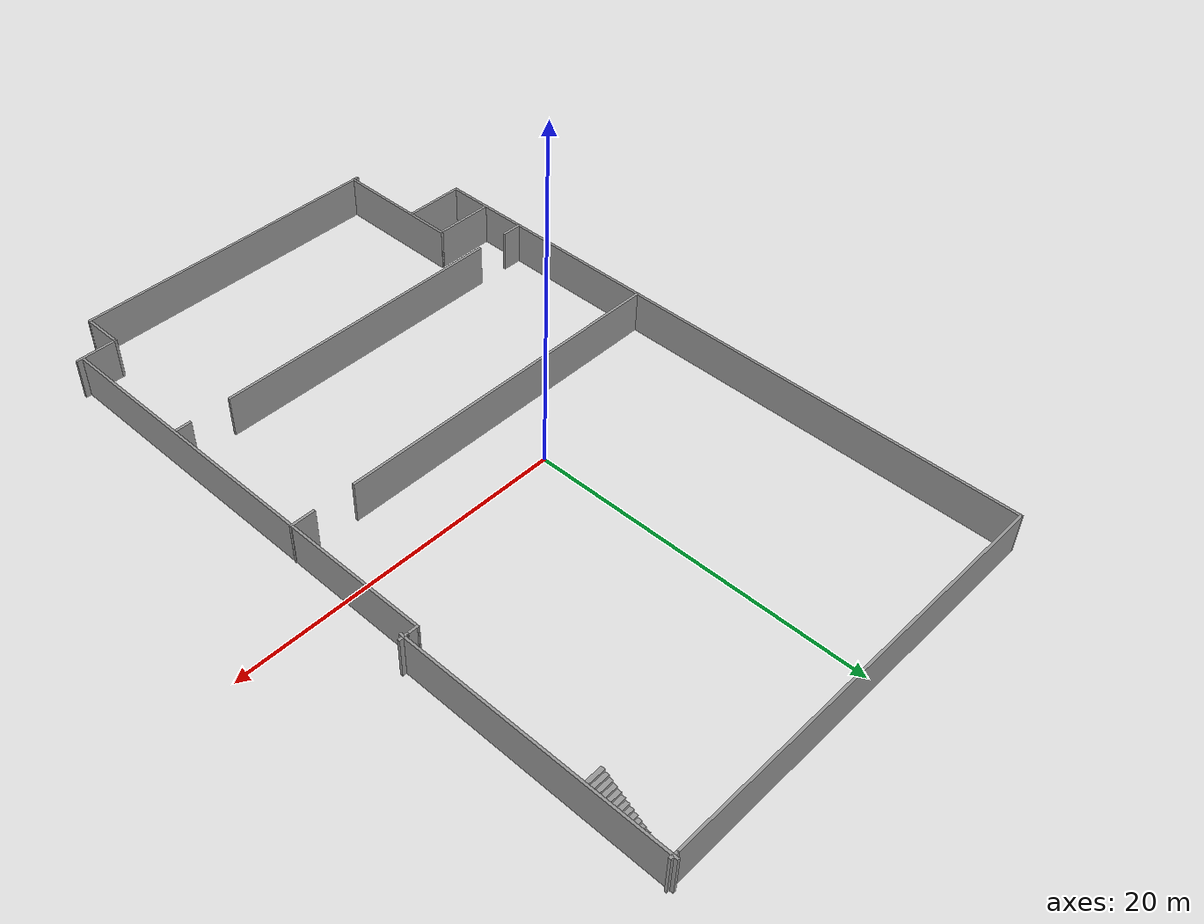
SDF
<?xml version='1.0'?>
<sdf version='1.7'>
  <model name='IMI'>
    <pose>1.61808 -1.29418 0 0 -0 0</pose>
    <link name='Stairs_0'>
      <visual name='Stairs_0_Visual_0'>
        <pose>11.9614 20.3772 0.083333 0 -0 0</pose>
        <geometry>
          <box>
            <size>1 0.233333 0.166667</size>
          </box>
        </geometry>
        <material>
          <script>
            <uri>file://media/materials/scripts/gazebo.material</uri>
            <name>Gazebo/Grey</name>
          </script>
          <ambient>1 1 1 1</ambient>
        </material>
        <meta>
          <layer>0</layer>
        </meta>
      </visual>
      <collision name='Stairs_0_Collision_0'>
        <geometry>
          <box>
            <size>1 0.233333 0.166667</size>
          </box>
        </geometry>
        <pose>11.9614 20.3772 0.083333 0 -0 0</pose>
      </collision>
      <visual name='Stairs_0_Visual_1'>
        <pose>11.9614 20.1438 0.25 0 -0 0</pose>
        <geometry>
          <box>
            <size>1 0.233333 0.166667</size>
          </box>
        </geometry>
        <material>
          <script>
            <uri>file://media/materials/scripts/gazebo.material</uri>
            <name>Gazebo/Grey</name>
          </script>
          <ambient>1 1 1 1</ambient>
        </material>
        <meta>
          <layer>0</layer>
        </meta>
      </visual>
      <collision name='Stairs_0_Collision_1'>
        <geometry>
          <box>
            <size>1 0.233333 0.166667</size>
          </box>
        </geometry>
        <pose>11.9614 20.1438 0.25 0 -0 0</pose>
      </collision>
      <visual name='Stairs_0_Visual_2'>
        <pose>11.9614 19.9105 0.416667 0 -0 0</pose>
        <geometry>
          <box>
            <size>1 0.233333 0.166667</size>
          </box>
        </geometry>
        <material>
          <script>
            <uri>file://media/materials/scripts/gazebo.material</uri>
            <name>Gazebo/Grey</name>
          </script>
          <ambient>1 1 1 1</ambient>
        </material>
        <meta>
          <layer>0</layer>
        </meta>
      </visual>
      <collision name='Stairs_0_Collision_2'>
        <geometry>
          <box>
            <size>1 0.233333 0.166667</size>
          </box>
        </geometry>
        <pose>11.9614 19.9105 0.416667 0 -0 0</pose>
      </collision>
      <visual name='Stairs_0_Visual_3'>
        <pose>11.9614 19.6772 0.583333 0 -0 0</pose>
        <geometry>
          <box>
            <size>1 0.233333 0.166667</size>
          </box>
        </geometry>
        <material>
          <script>
            <uri>file://media/materials/scripts/gazebo.material</uri>
            <name>Gazebo/Grey</name>
          </script>
          <ambient>1 1 1 1</ambient>
        </material>
        <meta>
          <layer>0</layer>
        </meta>
      </visual>
      <collision name='Stairs_0_Collision_3'>
        <geometry>
          <box>
            <size>1 0.233333 0.166667</size>
          </box>
        </geometry>
        <pose>11.9614 19.6772 0.583333 0 -0 0</pose>
      </collision>
      <visual name='Stairs_0_Visual_4'>
        <pose>11.9614 19.4438 0.75 0 -0 0</pose>
        <geometry>
          <box>
            <size>1 0.233333 0.166667</size>
          </box>
        </geometry>
        <material>
          <script>
            <uri>file://media/materials/scripts/gazebo.material</uri>
            <name>Gazebo/Grey</name>
          </script>
          <ambient>1 1 1 1</ambient>
        </material>
        <meta>
          <layer>0</layer>
        </meta>
      </visual>
      <collision name='Stairs_0_Collision_4'>
        <geometry>
          <box>
            <size>1 0.233333 0.166667</size>
          </box>
        </geometry>
        <pose>11.9614 19.4438 0.75 0 -0 0</pose>
      </collision>
      <visual name='Stairs_0_Visual_5'>
        <pose>11.9614 19.2105 0.916667 0 -0 0</pose>
        <geometry>
          <box>
            <size>1 0.233333 0.166667</size>
          </box>
        </geometry>
        <material>
          <script>
            <uri>file://media/materials/scripts/gazebo.material</uri>
            <name>Gazebo/Grey</name>
          </script>
          <ambient>1 1 1 1</ambient>
        </material>
        <meta>
          <layer>0</layer>
        </meta>
      </visual>
      <collision name='Stairs_0_Collision_5'>
        <geometry>
          <box>
            <size>1 0.233333 0.166667</size>
          </box>
        </geometry>
        <pose>11.9614 19.2105 0.916667 0 -0 0</pose>
      </collision>
      <visual name='Stairs_0_Visual_6'>
        <pose>11.9614 18.9772 1.08333 0 -0 0</pose>
        <geometry>
          <box>
            <size>1 0.233333 0.166667</size>
          </box>
        </geometry>
        <material>
          <script>
            <uri>file://media/materials/scripts/gazebo.material</uri>
            <name>Gazebo/Grey</name>
          </script>
          <ambient>1 1 1 1</ambient>
        </material>
        <meta>
          <layer>0</layer>
        </meta>
      </visual>
      <collision name='Stairs_0_Collision_6'>
        <geometry>
          <box>
            <size>1 0.233333 0.166667</size>
          </box>
        </geometry>
        <pose>11.9614 18.9772 1.08333 0 -0 0</pose>
      </collision>
      <visual name='Stairs_0_Visual_7'>
        <pose>11.9614 18.7438 1.25 0 -0 0</pose>
        <geometry>
          <box>
            <size>1 0.233333 0.166667</size>
          </box>
        </geometry>
        <material>
          <script>
            <uri>file://media/materials/scripts/gazebo.material</uri>
            <name>Gazebo/Grey</name>
          </script>
          <ambient>1 1 1 1</ambient>
        </material>
        <meta>
          <layer>0</layer>
        </meta>
      </visual>
      <collision name='Stairs_0_Collision_7'>
        <geometry>
          <box>
            <size>1 0.233333 0.166667</size>
          </box>
        </geometry>
        <pose>11.9614 18.7438 1.25 0 -0 0</pose>
      </collision>
      <visual name='Stairs_0_Visual_8'>
        <pose>11.9614 18.5105 1.41667 0 -0 0</pose>
        <geometry>
          <box>
            <size>1 0.233333 0.166667</size>
          </box>
        </geometry>
        <material>
          <script>
            <uri>file://media/materials/scripts/gazebo.material</uri>
            <name>Gazebo/Grey</name>
          </script>
          <ambient>1 1 1 1</ambient>
        </material>
        <meta>
          <layer>0</layer>
        </meta>
      </visual>
      <collision name='Stairs_0_Collision_8'>
        <geometry>
          <box>
            <size>1 0.233333 0.166667</size>
          </box>
        </geometry>
        <pose>11.9614 18.5105 1.41667 0 -0 0</pose>
      </collision>
      <visual name='Stairs_0_Visual_9'>
        <pose>11.9614 18.2772 1.58333 0 -0 0</pose>
        <geometry>
          <box>
            <size>1 0.233333 0.166667</size>
          </box>
        </geometry>
        <material>
          <script>
            <uri>file://media/materials/scripts/gazebo.material</uri>
            <name>Gazebo/Grey</name>
          </script>
          <ambient>1 1 1 1</ambient>
        </material>
        <meta>
          <layer>0</layer>
        </meta>
      </visual>
      <collision name='Stairs_0_Collision_9'>
        <geometry>
          <box>
            <size>1 0.233333 0.166667</size>
          </box>
        </geometry>
        <pose>11.9614 18.2772 1.58333 0 -0 0</pose>
      </collision>
      <visual name='Stairs_0_Visual_10'>
        <pose>11.9614 18.0438 1.75 0 -0 0</pose>
        <geometry>
          <box>
            <size>1 0.233333 0.166667</size>
          </box>
        </geometry>
        <material>
          <script>
            <uri>file://media/materials/scripts/gazebo.material</uri>
            <name>Gazebo/Grey</name>
          </script>
          <ambient>1 1 1 1</ambient>
        </material>
        <meta>
          <layer>0</layer>
        </meta>
      </visual>
      <collision name='Stairs_0_Collision_10'>
        <geometry>
          <box>
            <size>1 0.233333 0.166667</size>
          </box>
        </geometry>
        <pose>11.9614 18.0438 1.75 0 -0 0</pose>
      </collision>
      <visual name='Stairs_0_Visual_11'>
        <pose>11.9614 17.8105 1.91667 0 -0 0</pose>
        <geometry>
          <box>
            <size>1 0.233333 0.166667</size>
          </box>
        </geometry>
        <material>
          <script>
            <uri>file://media/materials/scripts/gazebo.material</uri>
            <name>Gazebo/Grey</name>
          </script>
          <ambient>1 1 1 1</ambient>
        </material>
        <meta>
          <layer>0</layer>
        </meta>
      </visual>
      <collision name='Stairs_0_Collision_11'>
        <geometry>
          <box>
            <size>1 0.233333 0.166667</size>
          </box>
        </geometry>
        <pose>11.9614 17.8105 1.91667 0 -0 0</pose>
      </collision>
      <visual name='Stairs_0_Visual_12'>
        <pose>11.9614 17.5772 2.08333 0 -0 0</pose>
        <geometry>
          <box>
            <size>1 0.233333 0.166667</size>
          </box>
        </geometry>
        <material>
          <script>
            <uri>file://media/materials/scripts/gazebo.material</uri>
            <name>Gazebo/Grey</name>
          </script>
          <ambient>1 1 1 1</ambient>
        </material>
        <meta>
          <layer>0</layer>
        </meta>
      </visual>
      <collision name='Stairs_0_Collision_12'>
        <geometry>
          <box>
            <size>1 0.233333 0.166667</size>
          </box>
        </geometry>
        <pose>11.9614 17.5772 2.08333 0 -0 0</pose>
      </collision>
      <visual name='Stairs_0_Visual_13'>
        <pose>11.9614 17.3438 2.25 0 -0 0</pose>
        <geometry>
          <box>
            <size>1 0.233333 0.166667</size>
          </box>
        </geometry>
        <material>
          <script>
            <uri>file://media/materials/scripts/gazebo.material</uri>
            <name>Gazebo/Grey</name>
          </script>
          <ambient>1 1 1 1</ambient>
        </material>
        <meta>
          <layer>0</layer>
        </meta>
      </visual>
      <collision name='Stairs_0_Collision_13'>
        <geometry>
          <box>
            <size>1 0.233333 0.166667</size>
          </box>
        </geometry>
        <pose>11.9614 17.3438 2.25 0 -0 0</pose>
      </collision>
      <visual name='Stairs_0_Visual_14'>
        <pose>11.9614 17.1105 2.41667 0 -0 0</pose>
        <geometry>
          <box>
            <size>1 0.233333 0.166667</size>
          </box>
        </geometry>
        <material>
          <script>
            <uri>file://media/materials/scripts/gazebo.material</uri>
            <name>Gazebo/Grey</name>
          </script>
          <ambient>1 1 1 1</ambient>
        </material>
        <meta>
          <layer>0</layer>
        </meta>
      </visual>
      <collision name='Stairs_0_Collision_14'>
        <geometry>
          <box>
            <size>1 0.233333 0.166667</size>
          </box>
        </geometry>
        <pose>11.9614 17.1105 2.41667 0 -0 0</pose>
      </collision>
    </link>
    <link name='Wall_10'>
      <collision name='Wall_10_Collision'>
        <geometry>
          <box>
            <size>2.5 0.15 2.5</size>
          </box>
        </geometry>
        <pose>0 0 1.25 0 -0 0</pose>
      </collision>
      <visual name='Wall_10_Visual'>
        <pose>0 0 1.25 0 -0 0</pose>
        <geometry>
          <box>
            <size>2.5 0.15 2.5</size>
          </box>
        </geometry>
        <material>
          <script>
            <uri>file://media/materials/scripts/gazebo.material</uri>
            <name>Gazebo/Grey</name>
          </script>
          <ambient>1 1 1 1</ambient>
        </material>
        <meta>
          <layer>0</layer>
        </meta>
      </visual>
      <pose>9.69667 -20.7724 0 0 -0 1.5708</pose>
    </link>
    <link name='Wall_11'>
      <collision name='Wall_11_Collision'>
        <geometry>
          <box>
            <size>2.5 0.15 2.5</size>
          </box>
        </geometry>
        <pose>0 0 1.25 0 -0 0</pose>
      </collision>
      <visual name='Wall_11_Visual'>
        <pose>0 0 1.25 0 -0 0</pose>
        <geometry>
          <box>
            <size>2.5 0.15 2.5</size>
          </box>
        </geometry>
        <material>
          <script>
            <uri>file://media/materials/scripts/gazebo.material</uri>
            <name>Gazebo/Grey</name>
          </script>
          <ambient>1 1 1 1</ambient>
        </material>
        <meta>
          <layer>0</layer>
        </meta>
      </visual>
      <pose>10.8717 -19.5974 0 0 -0 0</pose>
    </link>
    <link name='Wall_16'>
      <collision name='Wall_16_Collision'>
        <geometry>
          <box>
            <size>26 0.15 2.5</size>
          </box>
        </geometry>
        <pose>0 0 1.25 0 -0 0</pose>
      </collision>
      <visual name='Wall_16_Visual'>
        <pose>0 0 1.25 0 -0 0</pose>
        <geometry>
          <box>
            <size>26 0.15 2.5</size>
          </box>
        </geometry>
        <material>
          <script>
            <uri>file://media/materials/scripts/gazebo.material</uri>
            <name>Gazebo/Grey</name>
          </script>
          <ambient>1 1 1 1</ambient>
        </material>
        <meta>
          <layer>0</layer>
        </meta>
      </visual>
      <pose>11.7291 -6.6289 0 0 -0 1.5708</pose>
    </link>
    <link name='Wall_17'>
      <collision name='Wall_17_Collision'>
        <geometry>
          <box>
            <size>0.75 0.15 2.5</size>
          </box>
        </geometry>
        <pose>0 0 1.25 0 -0 0</pose>
      </collision>
      <visual name='Wall_17_Visual'>
        <pose>0 0 1.25 0 -0 0</pose>
        <geometry>
          <box>
            <size>0.75 0.15 2.5</size>
          </box>
        </geometry>
        <material>
          <script>
            <uri>file://media/materials/scripts/gazebo.material</uri>
            <name>Gazebo/Grey</name>
          </script>
          <ambient>1 1 1 1</ambient>
        </material>
        <meta>
          <layer>0</layer>
        </meta>
      </visual>
      <pose>12.0291 6.2961 0 0 -0 0</pose>
    </link>
    <link name='Wall_18'>
      <collision name='Wall_18_Collision'>
        <geometry>
          <box>
            <size>0.25 0.15 2.5</size>
          </box>
        </geometry>
        <pose>0 0 1.25 0 -0 0</pose>
      </collision>
      <visual name='Wall_18_Visual'>
        <pose>0 0 1.25 0 -0 0</pose>
        <geometry>
          <box>
            <size>0.25 0.15 2.5</size>
          </box>
        </geometry>
        <material>
          <script>
            <uri>file://media/materials/scripts/gazebo.material</uri>
            <name>Gazebo/Grey</name>
          </script>
          <ambient>1 1 1 1</ambient>
        </material>
        <meta>
          <layer>0</layer>
        </meta>
      </visual>
      <pose>12.3791 6.2961 0 0 -0 0</pose>
    </link>
    <link name='Wall_19'>
      <collision name='Wall_19_Collision'>
        <geometry>
          <box>
            <size>0.15 0.15 2.5</size>
          </box>
        </geometry>
        <pose>0 0 1.25 0 -0 0</pose>
      </collision>
      <visual name='Wall_19_Visual'>
        <pose>0 0 1.25 0 -0 0</pose>
        <geometry>
          <box>
            <size>0.15 0.15 2.5</size>
          </box>
        </geometry>
        <material>
          <script>
            <uri>file://media/materials/scripts/gazebo.material</uri>
            <name>Gazebo/Grey</name>
          </script>
          <ambient>1 1 1 1</ambient>
        </material>
        <meta>
          <layer>0</layer>
        </meta>
      </visual>
      <pose>12.4291 6.2961 0 0 -0 0</pose>
    </link>
    <link name='Wall_20'>
      <collision name='Wall_20_Collision'>
        <geometry>
          <box>
            <size>0.5 0.15 2.5</size>
          </box>
        </geometry>
        <pose>0 0 1.25 0 -0 0</pose>
      </collision>
      <visual name='Wall_20_Visual'>
        <pose>0 0 1.25 0 -0 0</pose>
        <geometry>
          <box>
            <size>0.5 0.15 2.5</size>
          </box>
        </geometry>
        <material>
          <script>
            <uri>file://media/materials/scripts/gazebo.material</uri>
            <name>Gazebo/Grey</name>
          </script>
          <ambient>1 1 1 1</ambient>
        </material>
        <meta>
          <layer>0</layer>
        </meta>
      </visual>
      <pose>12.6041 6.2961 0 0 -0 0</pose>
    </link>
    <link name='Wall_22'>
      <collision name='Wall_22_Collision'>
        <geometry>
          <box>
            <size>16 0.15 2.5</size>
          </box>
        </geometry>
        <pose>0 0 1.25 0 -0 0</pose>
      </collision>
      <visual name='Wall_22_Visual'>
        <pose>0 0 1.25 0 -0 0</pose>
        <geometry>
          <box>
            <size>16 0.15 2.5</size>
          </box>
        </geometry>
        <material>
          <script>
            <uri>file://media/materials/scripts/gazebo.material</uri>
            <name>Gazebo/Grey</name>
          </script>
          <ambient>1 1 1 1</ambient>
        </material>
        <meta>
          <layer>0</layer>
        </meta>
      </visual>
      <pose>12.5362 14.0224 0 0 -0 -1.5708</pose>
    </link>
    <link name='Wall_25'>
      <collision name='Wall_25_Collision'>
        <geometry>
          <box>
            <size>25.25 0.15 2.5</size>
          </box>
        </geometry>
        <pose>0 0 1.25 0 -0 0</pose>
      </collision>
      <visual name='Wall_25_Visual'>
        <pose>0 0 1.25 0 -0 0</pose>
        <geometry>
          <box>
            <size>25.25 0.15 2.5</size>
          </box>
        </geometry>
        <material>
          <script>
            <uri>file://media/materials/scripts/gazebo.material</uri>
            <name>Gazebo/Grey</name>
          </script>
          <ambient>1 1 1 1</ambient>
        </material>
        <meta>
          <layer>0</layer>
        </meta>
      </visual>
      <pose>-0.203328 21.7526 0 0 -0 0</pose>
    </link>
    <link name='Wall_27'>
      <collision name='Wall_27_Collision'>
        <geometry>
          <box>
            <size>0.15 0.15 2.5</size>
          </box>
        </geometry>
        <pose>0 0 1.25 0 -0 0</pose>
      </collision>
      <visual name='Wall_27_Visual'>
        <pose>0 0 1.25 0 -0 0</pose>
        <geometry>
          <box>
            <size>0.15 0.15 2.5</size>
          </box>
        </geometry>
        <material>
          <script>
            <uri>file://media/materials/scripts/gazebo.material</uri>
            <name>Gazebo/Grey</name>
          </script>
          <ambient>1 1 1 1</ambient>
        </material>
        <meta>
          <layer>0</layer>
        </meta>
      </visual>
      <pose>12.3467 21.7526 0 0 -0 0</pose>
    </link>
    <link name='Wall_28'>
      <collision name='Wall_28_Collision'>
        <geometry>
          <box>
            <size>0.5 0.15 2.5</size>
          </box>
        </geometry>
        <pose>0 0 1.25 0 -0 0</pose>
      </collision>
      <visual name='Wall_28_Visual'>
        <pose>0 0 1.25 0 -0 0</pose>
        <geometry>
          <box>
            <size>0.5 0.15 2.5</size>
          </box>
        </geometry>
        <material>
          <script>
            <uri>file://media/materials/scripts/gazebo.material</uri>
            <name>Gazebo/Grey</name>
          </script>
          <ambient>1 1 1 1</ambient>
        </material>
        <meta>
          <layer>0</layer>
        </meta>
      </visual>
      <pose>12.5217 21.7526 0 0 -0 0</pose>
    </link>
    <link name='Wall_30'>
      <collision name='Wall_30_Collision'>
        <geometry>
          <box>
            <size>20.75 0.15 2.5</size>
          </box>
        </geometry>
        <pose>0 0 1.25 0 -0 0</pose>
      </collision>
      <visual name='Wall_30_Visual'>
        <pose>0 0 1.25 0 -0 0</pose>
        <geometry>
          <box>
            <size>20.75 0.15 2.5</size>
          </box>
        </geometry>
        <material>
          <script>
            <uri>file://media/materials/scripts/gazebo.material</uri>
            <name>Gazebo/Grey</name>
          </script>
          <ambient>1 1 1 1</ambient>
        </material>
        <meta>
          <layer>0</layer>
        </meta>
      </visual>
      <pose>-2.43025 -2.36831 0 0 -0 3.14159</pose>
    </link>
    <link name='Wall_32'>
      <collision name='Wall_32_Collision'>
        <geometry>
          <box>
            <size>18 0.15 2.5</size>
          </box>
        </geometry>
        <pose>0 0 1.25 0 -0 0</pose>
      </collision>
      <visual name='Wall_32_Visual'>
        <pose>0 0 1.25 0 -0 0</pose>
        <geometry>
          <box>
            <size>18 0.15 2.5</size>
          </box>
        </geometry>
        <material>
          <script>
            <uri>file://media/materials/scripts/gazebo.material</uri>
            <name>Gazebo/Grey</name>
          </script>
          <ambient>1 1 1 1</ambient>
        </material>
        <meta>
          <layer>0</layer>
        </meta>
      </visual>
      <pose>-0.662233 -11.5567 0 0 -0 0</pose>
    </link>
    <link name='Wall_34'>
      <collision name='Wall_34_Collision'>
        <geometry>
          <box>
            <size>1.25 0.15 2.5</size>
          </box>
        </geometry>
        <pose>0 0 1.25 0 -0 0</pose>
      </collision>
      <visual name='Wall_34_Visual'>
        <pose>0 0 1.25 0 -0 0</pose>
        <geometry>
          <box>
            <size>1.25 0.15 2.5</size>
          </box>
        </geometry>
        <material>
          <script>
            <uri>file://media/materials/scripts/gazebo.material</uri>
            <name>Gazebo/Grey</name>
          </script>
          <ambient>1 1 1 1</ambient>
        </material>
        <meta>
          <layer>0</layer>
        </meta>
      </visual>
      <pose>-12.1709 -11.5335 0 0 -0 3.14159</pose>
    </link>
    <link name='Wall_36'>
      <collision name='Wall_36_Collision'>
        <geometry>
          <box>
            <size>1 0.15 2.5</size>
          </box>
        </geometry>
        <pose>0 0 1.25 0 -0 0</pose>
      </collision>
      <visual name='Wall_36_Visual'>
        <pose>0 0 1.25 0 -0 0</pose>
        <geometry>
          <box>
            <size>1 0.15 2.5</size>
          </box>
        </geometry>
        <material>
          <script>
            <uri>file://media/materials/scripts/gazebo.material</uri>
            <name>Gazebo/Grey</name>
          </script>
          <ambient>1 1 1 1</ambient>
        </material>
        <meta>
          <layer>0</layer>
        </meta>
      </visual>
      <pose>11.2205 -11.5567 0 0 -0 0</pose>
    </link>
    <link name='Wall_38'>
      <collision name='Wall_38_Collision'>
        <geometry>
          <box>
            <size>1.5 0.15 2.5</size>
          </box>
        </geometry>
        <pose>0 0 1.25 0 -0 0</pose>
      </collision>
      <visual name='Wall_38_Visual'>
        <pose>0 0 1.25 0 -0 0</pose>
        <geometry>
          <box>
            <size>1.5 0.15 2.5</size>
          </box>
        </geometry>
        <material>
          <script>
            <uri>file://media/materials/scripts/gazebo.material</uri>
            <name>Gazebo/Grey</name>
          </script>
          <ambient>1 1 1 1</ambient>
        </material>
        <meta>
          <layer>0</layer>
        </meta>
      </visual>
      <pose>11.0809 -2.37907 0 0 -0 0</pose>
    </link>
    <link name='Wall_40'>
      <collision name='Wall_40_Collision'>
        <geometry>
          <box>
            <size>3.75 0.15 2.5</size>
          </box>
        </geometry>
        <pose>0 0 1.25 0 -0 0</pose>
      </collision>
      <visual name='Wall_40_Visual'>
        <pose>0 0 1.25 0 -0 0</pose>
        <geometry>
          <box>
            <size>3.75 0.15 2.5</size>
          </box>
        </geometry>
        <material>
          <script>
            <uri>file://media/materials/scripts/gazebo.material</uri>
            <name>Gazebo/Grey</name>
          </script>
          <ambient>1 1 1 1</ambient>
        </material>
        <meta>
          <layer>0</layer>
        </meta>
      </visual>
      <pose>-10.9366 -14.2563 0 0 -0 0</pose>
    </link>
    <link name='Wall_41'>
      <collision name='Wall_41_Collision'>
        <geometry>
          <box>
            <size>7.75 0.15 2.5</size>
          </box>
        </geometry>
        <pose>0 0 1.25 0 -0 0</pose>
      </collision>
      <visual name='Wall_41_Visual'>
        <pose>0 0 1.25 0 -0 0</pose>
        <geometry>
          <box>
            <size>7.75 0.15 2.5</size>
          </box>
        </geometry>
        <material>
          <script>
            <uri>file://media/materials/scripts/gazebo.material</uri>
            <name>Gazebo/Grey</name>
          </script>
          <ambient>1 1 1 1</ambient>
        </material>
        <meta>
          <layer>0</layer>
        </meta>
      </visual>
      <pose>-9.13656 -18.0563 0 0 -0 -1.5708</pose>
    </link>
    <link name='Wall_6'>
      <collision name='Wall_6_Collision'>
        <geometry>
          <box>
            <size>38.7157 0.15 2.5</size>
          </box>
        </geometry>
        <pose>0 0 1.25 0 -0 0</pose>
      </collision>
      <visual name='Wall_6_Visual'>
        <pose>0 0 1.25 0 -0 0</pose>
        <geometry>
          <box>
            <size>38.7157 0.15 2.5</size>
          </box>
        </geometry>
        <material>
          <script>
            <uri>file://media/materials/scripts/gazebo.material</uri>
            <name>Gazebo/Grey</name>
          </script>
          <ambient>1 1 1 1</ambient>
        </material>
        <meta>
          <layer>0</layer>
        </meta>
      </visual>
      <pose>-12.7662 2.46977 0 0 -0 -1.57146</pose>
    </link>
    <link name='Wall_7'>
      <collision name='Wall_7_Collision'>
        <geometry>
          <box>
            <size>3.75 0.15 2.5</size>
          </box>
        </geometry>
        <pose>0 0 1.25 0 -0 0</pose>
      </collision>
      <visual name='Wall_7_Visual'>
        <pose>0 0 1.25 0 -0 0</pose>
        <geometry>
          <box>
            <size>3.75 0.15 2.5</size>
          </box>
        </geometry>
        <material>
          <script>
            <uri>file://media/materials/scripts/gazebo.material</uri>
            <name>Gazebo/Grey</name>
          </script>
          <ambient>1 1 1 1</ambient>
        </material>
        <meta>
          <layer>0</layer>
        </meta>
      </visual>
      <pose>-10.9705 -16.8131 0 0 -0 0</pose>
    </link>
    <link name='Wall_9'>
      <collision name='Wall_9_Collision'>
        <geometry>
          <box>
            <size>19.25 0.15 2.5</size>
          </box>
        </geometry>
        <pose>0 0 1.25 0 -0 0</pose>
      </collision>
      <visual name='Wall_9_Visual'>
        <pose>0 0 1.25 0 -0 0</pose>
        <geometry>
          <box>
            <size>19.25 0.15 2.5</size>
          </box>
        </geometry>
        <material>
          <script>
            <uri>file://media/materials/scripts/gazebo.material</uri>
            <name>Gazebo/Grey</name>
          </script>
          <ambient>1 1 1 1</ambient>
        </material>
        <meta>
          <layer>0</layer>
        </meta>
      </visual>
      <pose>0.146672 -21.9388 0 0 -0 -0.000897</pose>
    </link>
    <static>1</static>
  </model>
</sdf>
